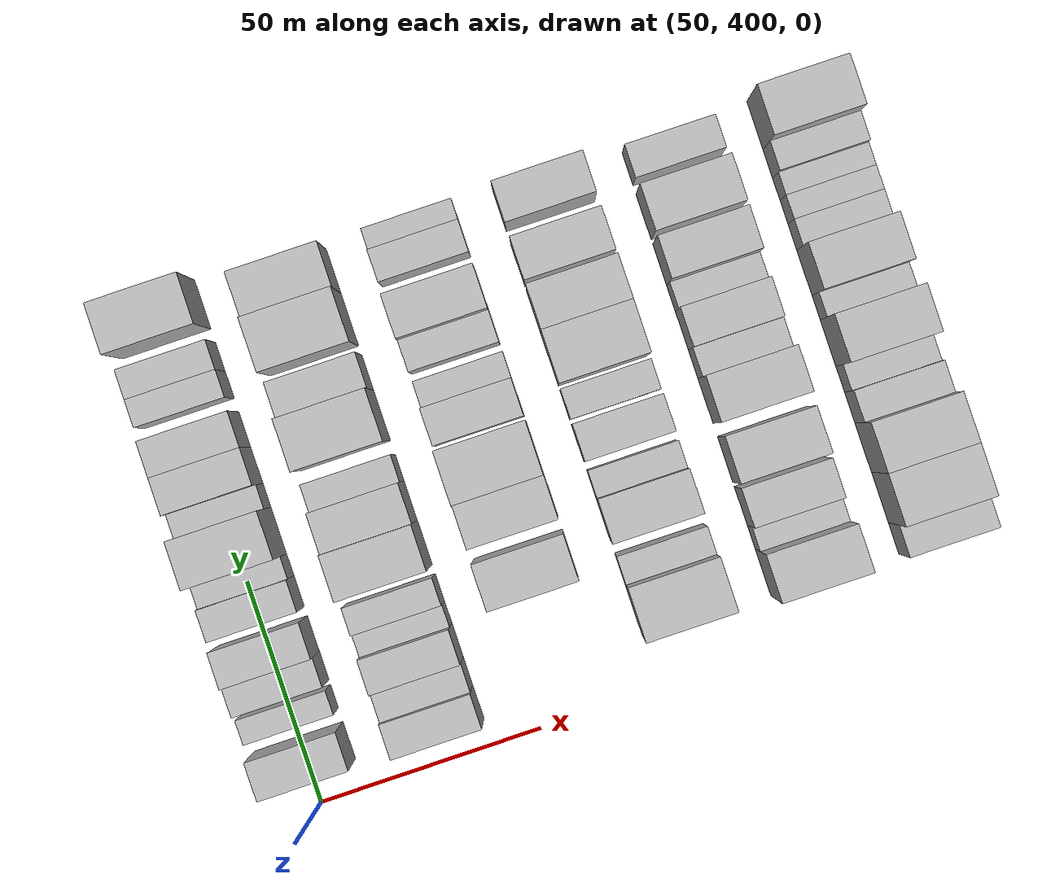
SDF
<sdf version="1.6">
 <world name="default">
  <model name="building_108">
   <static>1</static>
   <pose>50.0000 410.7129 0 0.000000 0.000000 0.000000</pose>
   <link name="link">
    <pose>0 0 9.00 0 0 0</pose>
    <collision name="collision"><geometry><box><size>20.0000 8.5270 18.0000</size></box></geometry></collision>
    <visual name="visual">
     <cast_shadows>0</cast_shadows>
     <geometry><box><size>20.0000 8.5270 18.0000</size></box></geometry>
     <material>
      <script>
       <uri>model://HANNAS_wall/materials/scripts</uri>
       <uri>model://HANNAS_wall/materials/textures</uri>
       <name>vrc/HANNAS_wall</name>
      </script>
     </material>
    </visual>
   </link>
  </model>
  <model name="building_109">
   <static>1</static>
   <pose>50.0000 420.6883 0 0.000000 0.000000 0.000000</pose>
   <link name="link">
    <pose>0 0 6.00 0 0 0</pose>
    <collision name="collision"><geometry><box><size>20.0000 5.4239 12.0000</size></box></geometry></collision>
    <visual name="visual">
     <cast_shadows>0</cast_shadows>
     <geometry><box><size>20.0000 5.4239 12.0000</size></box></geometry>
     <material>
      <script>
       <uri>model://HANNAS_wall/materials/scripts</uri>
       <uri>model://HANNAS_wall/materials/textures</uri>
       <name>vrc/HANNAS_wall</name>
      </script>
     </material>
    </visual>
   </link>
  </model>
  <model name="building_110">
   <static>1</static>
   <pose>50.0000 427.6740 0 0.000000 0.000000 0.000000</pose>
   <link name="link">
    <pose>0 0 7.50 0 0 0</pose>
    <collision name="collision"><geometry><box><size>20.0000 6.5473 15.0000</size></box></geometry></collision>
    <visual name="visual">
     <cast_shadows>0</cast_shadows>
     <geometry><box><size>20.0000 6.5473 15.0000</size></box></geometry>
     <material>
      <script>
       <uri>model://HANNAS_wall/materials/scripts</uri>
       <uri>model://HANNAS_wall/materials/textures</uri>
       <name>vrc/HANNAS_wall</name>
      </script>
     </material>
    </visual>
   </link>
  </model>
  <model name="building_111">
   <static>1</static>
   <pose>50.0000 434.9825 0 0.000000 0.000000 0.000000</pose>
   <link name="link">
    <pose>0 0 9.00 0 0 0</pose>
    <collision name="collision"><geometry><box><size>20.0000 8.0697 18.0000</size></box></geometry></collision>
    <visual name="visual">
     <cast_shadows>0</cast_shadows>
     <geometry><box><size>20.0000 8.0697 18.0000</size></box></geometry>
     <material>
      <script>
       <uri>model://HANNAS_wall/materials/scripts</uri>
       <uri>model://HANNAS_wall/materials/textures</uri>
       <name>vrc/HANNAS_wall</name>
      </script>
     </material>
    </visual>
   </link>
  </model>
  <model name="building_112">
   <static>1</static>
   <pose>50.0000 444.5631 0 0.000000 0.000000 0.000000</pose>
   <link name="link">
    <pose>0 0 7.50 0 0 0</pose>
    <collision name="collision"><geometry><box><size>20.0000 7.0915 15.0000</size></box></geometry></collision>
    <visual name="visual">
     <cast_shadows>0</cast_shadows>
     <geometry><box><size>20.0000 7.0915 15.0000</size></box></geometry>
     <material>
      <script>
       <uri>model://HANNAS_wall/materials/scripts</uri>
       <uri>model://HANNAS_wall/materials/textures</uri>
       <name>vrc/HANNAS_wall</name>
      </script>
     </material>
    </visual>
   </link>
  </model>
  <model name="building_113">
   <static>1</static>
   <pose>50.0000 450.5986 0 0.000000 0.000000 0.000000</pose>
   <link name="link">
    <pose>0 0 6.00 0 0 0</pose>
    <collision name="collision"><geometry><box><size>20.0000 4.9795 12.0000</size></box></geometry></collision>
    <visual name="visual">
     <cast_shadows>0</cast_shadows>
     <geometry><box><size>20.0000 4.9795 12.0000</size></box></geometry>
     <material>
      <script>
       <uri>model://HANNAS_wall/materials/scripts</uri>
       <uri>model://HANNAS_wall/materials/textures</uri>
       <name>vrc/HANNAS_wall</name>
      </script>
     </material>
    </visual>
   </link>
  </model>
  <model name="building_114">
   <static>1</static>
   <pose>50.0000 458.3895 0 0.000000 0.000000 0.000000</pose>
   <link name="link">
    <pose>0 0 12.00 0 0 0</pose>
    <collision name="collision"><geometry><box><size>20.0000 10.6023 24.0000</size></box></geometry></collision>
    <visual name="visual">
     <cast_shadows>0</cast_shadows>
     <geometry><box><size>20.0000 10.6023 24.0000</size></box></geometry>
     <material>
      <script>
       <uri>model://HANNAS_wall/materials/scripts</uri>
       <uri>model://HANNAS_wall/materials/textures</uri>
       <name>vrc/HANNAS_wall</name>
      </script>
     </material>
    </visual>
   </link>
  </model>
  <model name="building_115">
   <static>1</static>
   <pose>50.0000 466.3834 0 0.000000 0.000000 0.000000</pose>
   <link name="link">
    <pose>0 0 6.00 0 0 0</pose>
    <collision name="collision"><geometry><box><size>20.0000 5.3854 12.0000</size></box></geometry></collision>
    <visual name="visual">
     <cast_shadows>0</cast_shadows>
     <geometry><box><size>20.0000 5.3854 12.0000</size></box></geometry>
     <material>
      <script>
       <uri>model://HANNAS_wall/materials/scripts</uri>
       <uri>model://HANNAS_wall/materials/textures</uri>
       <name>vrc/HANNAS_wall</name>
      </script>
     </material>
    </visual>
   </link>
  </model>
  <model name="building_116">
   <static>1</static>
   <pose>50.0000 473.2191 0 0.000000 0.000000 0.000000</pose>
   <link name="link">
    <pose>0 0 9.00 0 0 0</pose>
    <collision name="collision"><geometry><box><size>20.0000 8.2861 18.0000</size></box></geometry></collision>
    <visual name="visual">
     <cast_shadows>0</cast_shadows>
     <geometry><box><size>20.0000 8.2861 18.0000</size></box></geometry>
     <material>
      <script>
       <uri>model://HANNAS_wall/materials/scripts</uri>
       <uri>model://HANNAS_wall/materials/textures</uri>
       <name>vrc/HANNAS_wall</name>
      </script>
     </material>
    </visual>
   </link>
  </model>
  <model name="building_117">
   <static>1</static>
   <pose>50.0000 481.3664 0 0.000000 0.000000 0.000000</pose>
   <link name="link">
    <pose>0 0 9.00 0 0 0</pose>
    <collision name="collision"><geometry><box><size>20.0000 8.0085 18.0000</size></box></geometry></collision>
    <visual name="visual">
     <cast_shadows>0</cast_shadows>
     <geometry><box><size>20.0000 8.0085 18.0000</size></box></geometry>
     <material>
      <script>
       <uri>model://HANNAS_wall/materials/scripts</uri>
       <uri>model://HANNAS_wall/materials/textures</uri>
       <name>vrc/HANNAS_wall</name>
      </script>
     </material>
    </visual>
   </link>
  </model>
  <model name="building_118">
   <static>1</static>
   <pose>50.0000 491.4674 0 0.000000 0.000000 0.000000</pose>
   <link name="link">
    <pose>0 0 7.50 0 0 0</pose>
    <collision name="collision"><geometry><box><size>20.0000 6.1935 15.0000</size></box></geometry></collision>
    <visual name="visual">
     <cast_shadows>0</cast_shadows>
     <geometry><box><size>20.0000 6.1935 15.0000</size></box></geometry>
     <material>
      <script>
       <uri>model://HANNAS_wall/materials/scripts</uri>
       <uri>model://HANNAS_wall/materials/textures</uri>
       <name>vrc/HANNAS_wall</name>
      </script>
     </material>
    </visual>
   </link>
  </model>
  <model name="building_119">
   <static>1</static>
   <pose>50.0000 497.8506 0 0.000000 0.000000 0.000000</pose>
   <link name="link">
    <pose>0 0 7.50 0 0 0</pose>
    <collision name="collision"><geometry><box><size>20.0000 6.5729 15.0000</size></box></geometry></collision>
    <visual name="visual">
     <cast_shadows>0</cast_shadows>
     <geometry><box><size>20.0000 6.5729 15.0000</size></box></geometry>
     <material>
      <script>
       <uri>model://HANNAS_wall/materials/scripts</uri>
       <uri>model://HANNAS_wall/materials/textures</uri>
       <name>vrc/HANNAS_wall</name>
      </script>
     </material>
    </visual>
   </link>
  </model>
  <model name="building_120">
   <static>1</static>
   <pose>50.0000 509.7215 0 0.000000 0.000000 0.000000</pose>
   <link name="link">
    <pose>0 0 12.00 0 0 0</pose>
    <collision name="collision"><geometry><box><size>20.0000 11.1689 24.0000</size></box></geometry></collision>
    <visual name="visual">
     <cast_shadows>0</cast_shadows>
     <geometry><box><size>20.0000 11.1689 24.0000</size></box></geometry>
     <material>
      <script>
       <uri>model://HANNAS_wall/materials/scripts</uri>
       <uri>model://HANNAS_wall/materials/textures</uri>
       <name>vrc/HANNAS_wall</name>
      </script>
     </material>
    </visual>
   </link>
  </model>
  <model name="building_222">
   <static>1</static>
   <pose>79.0000 409.7191 0 0.000000 0.000000 0.000000</pose>
   <link name="link">
    <pose>0 0 9.00 0 0 0</pose>
    <collision name="collision"><geometry><box><size>20.0000 7.7550 18.0000</size></box></geometry></collision>
    <visual name="visual">
     <cast_shadows>0</cast_shadows>
     <geometry><box><size>20.0000 7.7550 18.0000</size></box></geometry>
     <material>
      <script>
       <uri>model://HANNAS_wall/materials/scripts</uri>
       <uri>model://HANNAS_wall/materials/textures</uri>
       <name>vrc/HANNAS_wall</name>
      </script>
     </material>
    </visual>
   </link>
  </model>
  <model name="building_223">
   <static>1</static>
   <pose>79.0000 416.7603 0 0.000000 0.000000 0.000000</pose>
   <link name="link">
    <pose>0 0 7.50 0 0 0</pose>
    <collision name="collision"><geometry><box><size>20.0000 6.3274 15.0000</size></box></geometry></collision>
    <visual name="visual">
     <cast_shadows>0</cast_shadows>
     <geometry><box><size>20.0000 6.3274 15.0000</size></box></geometry>
     <material>
      <script>
       <uri>model://HANNAS_wall/materials/scripts</uri>
       <uri>model://HANNAS_wall/materials/textures</uri>
       <name>vrc/HANNAS_wall</name>
      </script>
     </material>
    </visual>
   </link>
  </model>
  <model name="building_224">
   <static>1</static>
   <pose>79.0000 423.8069 0 0.000000 0.000000 0.000000</pose>
   <link name="link">
    <pose>0 0 9.00 0 0 0</pose>
    <collision name="collision"><geometry><box><size>20.0000 7.7658 18.0000</size></box></geometry></collision>
    <visual name="visual">
     <cast_shadows>0</cast_shadows>
     <geometry><box><size>20.0000 7.7658 18.0000</size></box></geometry>
     <material>
      <script>
       <uri>model://HANNAS_wall/materials/scripts</uri>
       <uri>model://HANNAS_wall/materials/textures</uri>
       <name>vrc/HANNAS_wall</name>
      </script>
     </material>
    </visual>
   </link>
  </model>
  <model name="building_225">
   <static>1</static>
   <pose>79.0000 430.1908 0 0.000000 0.000000 0.000000</pose>
   <link name="link">
    <pose>0 0 6.00 0 0 0</pose>
    <collision name="collision"><geometry><box><size>20.0000 5.0019 12.0000</size></box></geometry></collision>
    <visual name="visual">
     <cast_shadows>0</cast_shadows>
     <geometry><box><size>20.0000 5.0019 12.0000</size></box></geometry>
     <material>
      <script>
       <uri>model://HANNAS_wall/materials/scripts</uri>
       <uri>model://HANNAS_wall/materials/textures</uri>
       <name>vrc/HANNAS_wall</name>
      </script>
     </material>
    </visual>
   </link>
  </model>
  <model name="building_226">
   <static>1</static>
   <pose>79.0000 435.7605 0 0.000000 0.000000 0.000000</pose>
   <link name="link">
    <pose>0 0 7.50 0 0 0</pose>
    <collision name="collision"><geometry><box><size>20.0000 6.1374 15.0000</size></box></geometry></collision>
    <visual name="visual">
     <cast_shadows>0</cast_shadows>
     <geometry><box><size>20.0000 6.1374 15.0000</size></box></geometry>
     <material>
      <script>
       <uri>model://HANNAS_wall/materials/scripts</uri>
       <uri>model://HANNAS_wall/materials/textures</uri>
       <name>vrc/HANNAS_wall</name>
      </script>
     </material>
    </visual>
   </link>
  </model>
  <model name="building_227">
   <static>1</static>
   <pose>79.0000 445.8902 0 0.000000 0.000000 0.000000</pose>
   <link name="link">
    <pose>0 0 12.00 0 0 0</pose>
    <collision name="collision"><geometry><box><size>20.0000 10.1221 24.0000</size></box></geometry></collision>
    <visual name="visual">
     <cast_shadows>0</cast_shadows>
     <geometry><box><size>20.0000 10.1221 24.0000</size></box></geometry>
     <material>
      <script>
       <uri>model://HANNAS_wall/materials/scripts</uri>
       <uri>model://HANNAS_wall/materials/textures</uri>
       <name>vrc/HANNAS_wall</name>
      </script>
     </material>
    </visual>
   </link>
  </model>
  <model name="building_228">
   <static>1</static>
   <pose>79.0000 455.4391 0 0.000000 0.000000 0.000000</pose>
   <link name="link">
    <pose>0 0 10.50 0 0 0</pose>
    <collision name="collision"><geometry><box><size>20.0000 8.9757 21.0000</size></box></geometry></collision>
    <visual name="visual">
     <cast_shadows>0</cast_shadows>
     <geometry><box><size>20.0000 8.9757 21.0000</size></box></geometry>
     <material>
      <script>
       <uri>model://HANNAS_wall/materials/scripts</uri>
       <uri>model://HANNAS_wall/materials/textures</uri>
       <name>vrc/HANNAS_wall</name>
      </script>
     </material>
    </visual>
   </link>
  </model>
  <model name="building_229">
   <static>1</static>
   <pose>79.0000 462.9664 0 0.000000 0.000000 0.000000</pose>
   <link name="link">
    <pose>0 0 7.50 0 0 0</pose>
    <collision name="collision"><geometry><box><size>20.0000 6.0789 15.0000</size></box></geometry></collision>
    <visual name="visual">
     <cast_shadows>0</cast_shadows>
     <geometry><box><size>20.0000 6.0789 15.0000</size></box></geometry>
     <material>
      <script>
       <uri>model://HANNAS_wall/materials/scripts</uri>
       <uri>model://HANNAS_wall/materials/textures</uri>
       <name>vrc/HANNAS_wall</name>
      </script>
     </material>
    </visual>
   </link>
  </model>
  <model name="building_230">
   <static>1</static>
   <pose>79.0000 474.7617 0 0.000000 0.000000 0.000000</pose>
   <link name="link">
    <pose>0 0 12.00 0 0 0</pose>
    <collision name="collision"><geometry><box><size>20.0000 11.5117 24.0000</size></box></geometry></collision>
    <visual name="visual">
     <cast_shadows>0</cast_shadows>
     <geometry><box><size>20.0000 11.5117 24.0000</size></box></geometry>
     <material>
      <script>
       <uri>model://HANNAS_wall/materials/scripts</uri>
       <uri>model://HANNAS_wall/materials/textures</uri>
       <name>vrc/HANNAS_wall</name>
      </script>
     </material>
    </visual>
   </link>
  </model>
  <model name="building_231">
   <static>1</static>
   <pose>79.0000 484.5185 0 0.000000 0.000000 0.000000</pose>
   <link name="link">
    <pose>0 0 9.00 0 0 0</pose>
    <collision name="collision"><geometry><box><size>20.0000 8.0020 18.0000</size></box></geometry></collision>
    <visual name="visual">
     <cast_shadows>0</cast_shadows>
     <geometry><box><size>20.0000 8.0020 18.0000</size></box></geometry>
     <material>
      <script>
       <uri>model://HANNAS_wall/materials/scripts</uri>
       <uri>model://HANNAS_wall/materials/textures</uri>
       <name>vrc/HANNAS_wall</name>
      </script>
     </material>
    </visual>
   </link>
  </model>
  <model name="building_232">
   <static>1</static>
   <pose>79.0000 496.5039 0 0.000000 0.000000 0.000000</pose>
   <link name="link">
    <pose>0 0 12.00 0 0 0</pose>
    <collision name="collision"><geometry><box><size>20.0000 11.9688 24.0000</size></box></geometry></collision>
    <visual name="visual">
     <cast_shadows>0</cast_shadows>
     <geometry><box><size>20.0000 11.9688 24.0000</size></box></geometry>
     <material>
      <script>
       <uri>model://HANNAS_wall/materials/scripts</uri>
       <uri>model://HANNAS_wall/materials/textures</uri>
       <name>vrc/HANNAS_wall</name>
      </script>
     </material>
    </visual>
   </link>
  </model>
  <model name="building_233">
   <static>1</static>
   <pose>79.0000 507.5259 0 0.000000 0.000000 0.000000</pose>
   <link name="link">
    <pose>0 0 10.50 0 0 0</pose>
    <collision name="collision"><geometry><box><size>20.0000 10.0751 21.0000</size></box></geometry></collision>
    <visual name="visual">
     <cast_shadows>0</cast_shadows>
     <geometry><box><size>20.0000 10.0751 21.0000</size></box></geometry>
     <material>
      <script>
       <uri>model://HANNAS_wall/materials/scripts</uri>
       <uri>model://HANNAS_wall/materials/textures</uri>
       <name>vrc/HANNAS_wall</name>
      </script>
     </material>
    </visual>
   </link>
  </model>
  <model name="building_337">
   <static>1</static>
   <pose>108.0000 434.0987 0 0.000000 0.000000 0.000000</pose>
   <link name="link">
    <pose>0 0 12.00 0 0 0</pose>
    <collision name="collision"><geometry><box><size>20.0000 10.2531 24.0000</size></box></geometry></collision>
    <visual name="visual">
     <cast_shadows>0</cast_shadows>
     <geometry><box><size>20.0000 10.2531 24.0000</size></box></geometry>
     <material>
      <script>
       <uri>model://HANNAS_wall/materials/scripts</uri>
       <uri>model://HANNAS_wall/materials/textures</uri>
       <name>vrc/HANNAS_wall</name>
      </script>
     </material>
    </visual>
   </link>
  </model>
  <model name="building_338">
   <static>1</static>
   <pose>108.0000 447.0614 0 0.000000 0.000000 0.000000</pose>
   <link name="link">
    <pose>0 0 10.50 0 0 0</pose>
    <collision name="collision"><geometry><box><size>20.0000 9.6722 21.0000</size></box></geometry></collision>
    <visual name="visual">
     <cast_shadows>0</cast_shadows>
     <geometry><box><size>20.0000 9.6722 21.0000</size></box></geometry>
     <material>
      <script>
       <uri>model://HANNAS_wall/materials/scripts</uri>
       <uri>model://HANNAS_wall/materials/textures</uri>
       <name>vrc/HANNAS_wall</name>
      </script>
     </material>
    </visual>
   </link>
  </model>
  <model name="building_339">
   <static>1</static>
   <pose>108.0000 457.8442 0 0.000000 0.000000 0.000000</pose>
   <link name="link">
    <pose>0 0 12.00 0 0 0</pose>
    <collision name="collision"><geometry><box><size>20.0000 11.8935 24.0000</size></box></geometry></collision>
    <visual name="visual">
     <cast_shadows>0</cast_shadows>
     <geometry><box><size>20.0000 11.8935 24.0000</size></box></geometry>
     <material>
      <script>
       <uri>model://HANNAS_wall/materials/scripts</uri>
       <uri>model://HANNAS_wall/materials/textures</uri>
       <name>vrc/HANNAS_wall</name>
      </script>
     </material>
    </visual>
   </link>
  </model>
  <model name="building_340">
   <static>1</static>
   <pose>108.0000 468.9716 0 0.000000 0.000000 0.000000</pose>
   <link name="link">
    <pose>0 0 9.00 0 0 0</pose>
    <collision name="collision"><geometry><box><size>20.0000 8.3612 18.0000</size></box></geometry></collision>
    <visual name="visual">
     <cast_shadows>0</cast_shadows>
     <geometry><box><size>20.0000 8.3612 18.0000</size></box></geometry>
     <material>
      <script>
       <uri>model://HANNAS_wall/materials/scripts</uri>
       <uri>model://HANNAS_wall/materials/textures</uri>
       <name>vrc/HANNAS_wall</name>
      </script>
     </material>
    </visual>
   </link>
  </model>
  <model name="building_341">
   <static>1</static>
   <pose>108.0000 476.1257 0 0.000000 0.000000 0.000000</pose>
   <link name="link">
    <pose>0 0 6.00 0 0 0</pose>
    <collision name="collision"><geometry><box><size>20.0000 5.9470 12.0000</size></box></geometry></collision>
    <visual name="visual">
     <cast_shadows>0</cast_shadows>
     <geometry><box><size>20.0000 5.9470 12.0000</size></box></geometry>
     <material>
      <script>
       <uri>model://HANNAS_wall/materials/scripts</uri>
       <uri>model://HANNAS_wall/materials/textures</uri>
       <name>vrc/HANNAS_wall</name>
      </script>
     </material>
    </visual>
   </link>
  </model>
  <model name="building_342">
   <static>1</static>
   <pose>108.0000 484.6479 0 0.000000 0.000000 0.000000</pose>
   <link name="link">
    <pose>0 0 7.50 0 0 0</pose>
    <collision name="collision"><geometry><box><size>20.0000 7.0975 15.0000</size></box></geometry></collision>
    <visual name="visual">
     <cast_shadows>0</cast_shadows>
     <geometry><box><size>20.0000 7.0975 15.0000</size></box></geometry>
     <material>
      <script>
       <uri>model://HANNAS_wall/materials/scripts</uri>
       <uri>model://HANNAS_wall/materials/textures</uri>
       <name>vrc/HANNAS_wall</name>
      </script>
     </material>
    </visual>
   </link>
  </model>
  <model name="building_343">
   <static>1</static>
   <pose>108.0000 493.0697 0 0.000000 0.000000 0.000000</pose>
   <link name="link">
    <pose>0 0 10.50 0 0 0</pose>
    <collision name="collision"><geometry><box><size>20.0000 9.7461 21.0000</size></box></geometry></collision>
    <visual name="visual">
     <cast_shadows>0</cast_shadows>
     <geometry><box><size>20.0000 9.7461 21.0000</size></box></geometry>
     <material>
      <script>
       <uri>model://HANNAS_wall/materials/scripts</uri>
       <uri>model://HANNAS_wall/materials/textures</uri>
       <name>vrc/HANNAS_wall</name>
      </script>
     </material>
    </visual>
   </link>
  </model>
  <model name="building_344">
   <static>1</static>
   <pose>108.0000 504.5458 0 0.000000 0.000000 0.000000</pose>
   <link name="link">
    <pose>0 0 7.50 0 0 0</pose>
    <collision name="collision"><geometry><box><size>20.0000 7.2060 15.0000</size></box></geometry></collision>
    <visual name="visual">
     <cast_shadows>0</cast_shadows>
     <geometry><box><size>20.0000 7.2060 15.0000</size></box></geometry>
     <material>
      <script>
       <uri>model://HANNAS_wall/materials/scripts</uri>
       <uri>model://HANNAS_wall/materials/textures</uri>
       <name>vrc/HANNAS_wall</name>
      </script>
     </material>
    </visual>
   </link>
  </model>
  <model name="building_345">
   <static>1</static>
   <pose>108.0000 510.6068 0 0.000000 0.000000 0.000000</pose>
   <link name="link">
    <pose>0 0 6.00 0 0 0</pose>
    <collision name="collision"><geometry><box><size>20.0000 4.9160 12.0000</size></box></geometry></collision>
    <visual name="visual">
     <cast_shadows>0</cast_shadows>
     <geometry><box><size>20.0000 4.9160 12.0000</size></box></geometry>
     <material>
      <script>
       <uri>model://HANNAS_wall/materials/scripts</uri>
       <uri>model://HANNAS_wall/materials/textures</uri>
       <name>vrc/HANNAS_wall</name>
      </script>
     </material>
    </visual>
   </link>
  </model>
  <model name="building_440">
   <static>1</static>
   <pose>137.0000 418.4903 0 0.000000 0.000000 0.000000</pose>
   <link name="link">
    <pose>0 0 12.00 0 0 0</pose>
    <collision name="collision"><geometry><box><size>20.0000 11.9737 24.0000</size></box></geometry></collision>
    <visual name="visual">
     <cast_shadows>0</cast_shadows>
     <geometry><box><size>20.0000 11.9737 24.0000</size></box></geometry>
     <material>
      <script>
       <uri>model://HANNAS_wall/materials/scripts</uri>
       <uri>model://HANNAS_wall/materials/textures</uri>
       <name>vrc/HANNAS_wall</name>
      </script>
     </material>
    </visual>
   </link>
  </model>
  <model name="building_441">
   <static>1</static>
   <pose>137.0000 427.6002 0 0.000000 0.000000 0.000000</pose>
   <link name="link">
    <pose>0 0 7.50 0 0 0</pose>
    <collision name="collision"><geometry><box><size>20.0000 6.2462 15.0000</size></box></geometry></collision>
    <visual name="visual">
     <cast_shadows>0</cast_shadows>
     <geometry><box><size>20.0000 6.2462 15.0000</size></box></geometry>
     <material>
      <script>
       <uri>model://HANNAS_wall/materials/scripts</uri>
       <uri>model://HANNAS_wall/materials/textures</uri>
       <name>vrc/HANNAS_wall</name>
      </script>
     </material>
    </visual>
   </link>
  </model>
  <model name="building_442">
   <static>1</static>
   <pose>137.0000 438.6458 0 0.000000 0.000000 0.000000</pose>
   <link name="link">
    <pose>0 0 10.50 0 0 0</pose>
    <collision name="collision"><geometry><box><size>20.0000 9.8450 21.0000</size></box></geometry></collision>
    <visual name="visual">
     <cast_shadows>0</cast_shadows>
     <geometry><box><size>20.0000 9.8450 21.0000</size></box></geometry>
     <material>
      <script>
       <uri>model://HANNAS_wall/materials/scripts</uri>
       <uri>model://HANNAS_wall/materials/textures</uri>
       <name>vrc/HANNAS_wall</name>
      </script>
     </material>
    </visual>
   </link>
  </model>
  <model name="building_443">
   <static>1</static>
   <pose>137.0000 446.6160 0 0.000000 0.000000 0.000000</pose>
   <link name="link">
    <pose>0 0 7.50 0 0 0</pose>
    <collision name="collision"><geometry><box><size>20.0000 6.0954 15.0000</size></box></geometry></collision>
    <visual name="visual">
     <cast_shadows>0</cast_shadows>
     <geometry><box><size>20.0000 6.0954 15.0000</size></box></geometry>
     <material>
      <script>
       <uri>model://HANNAS_wall/materials/scripts</uri>
       <uri>model://HANNAS_wall/materials/textures</uri>
       <name>vrc/HANNAS_wall</name>
      </script>
     </material>
    </visual>
   </link>
  </model>
  <model name="building_444">
   <static>1</static>
   <pose>137.0000 455.8080 0 0.000000 0.000000 0.000000</pose>
   <link name="link">
    <pose>0 0 9.00 0 0 0</pose>
    <collision name="collision"><geometry><box><size>20.0000 8.2885 18.0000</size></box></geometry></collision>
    <visual name="visual">
     <cast_shadows>0</cast_shadows>
     <geometry><box><size>20.0000 8.2885 18.0000</size></box></geometry>
     <material>
      <script>
       <uri>model://HANNAS_wall/materials/scripts</uri>
       <uri>model://HANNAS_wall/materials/textures</uri>
       <name>vrc/HANNAS_wall</name>
      </script>
     </material>
    </visual>
   </link>
  </model>
  <model name="building_445">
   <static>1</static>
   <pose>137.0000 464.3115 0 0.000000 0.000000 0.000000</pose>
   <link name="link">
    <pose>0 0 7.50 0 0 0</pose>
    <collision name="collision"><geometry><box><size>20.0000 6.7185 15.0000</size></box></geometry></collision>
    <visual name="visual">
     <cast_shadows>0</cast_shadows>
     <geometry><box><size>20.0000 6.7185 15.0000</size></box></geometry>
     <material>
      <script>
       <uri>model://HANNAS_wall/materials/scripts</uri>
       <uri>model://HANNAS_wall/materials/textures</uri>
       <name>vrc/HANNAS_wall</name>
      </script>
     </material>
    </visual>
   </link>
  </model>
  <model name="building_446">
   <static>1</static>
   <pose>137.0000 474.4955 0 0.000000 0.000000 0.000000</pose>
   <link name="link">
    <pose>0 0 12.00 0 0 0</pose>
    <collision name="collision"><geometry><box><size>20.0000 11.6496 24.0000</size></box></geometry></collision>
    <visual name="visual">
     <cast_shadows>0</cast_shadows>
     <geometry><box><size>20.0000 11.6496 24.0000</size></box></geometry>
     <material>
      <script>
       <uri>model://HANNAS_wall/materials/scripts</uri>
       <uri>model://HANNAS_wall/materials/textures</uri>
       <name>vrc/HANNAS_wall</name>
      </script>
     </material>
    </visual>
   </link>
  </model>
  <model name="building_447">
   <static>1</static>
   <pose>137.0000 485.2521 0 0.000000 0.000000 0.000000</pose>
   <link name="link">
    <pose>0 0 12.00 0 0 0</pose>
    <collision name="collision"><geometry><box><size>20.0000 9.8636 24.0000</size></box></geometry></collision>
    <visual name="visual">
     <cast_shadows>0</cast_shadows>
     <geometry><box><size>20.0000 9.8636 24.0000</size></box></geometry>
     <material>
      <script>
       <uri>model://HANNAS_wall/materials/scripts</uri>
       <uri>model://HANNAS_wall/materials/textures</uri>
       <name>vrc/HANNAS_wall</name>
      </script>
     </material>
    </visual>
   </link>
  </model>
  <model name="building_448">
   <static>1</static>
   <pose>137.0000 495.9724 0 0.000000 0.000000 0.000000</pose>
   <link name="link">
    <pose>0 0 10.50 0 0 0</pose>
    <collision name="collision"><geometry><box><size>20.0000 9.5770 21.0000</size></box></geometry></collision>
    <visual name="visual">
     <cast_shadows>0</cast_shadows>
     <geometry><box><size>20.0000 9.5770 21.0000</size></box></geometry>
     <material>
      <script>
       <uri>model://HANNAS_wall/materials/scripts</uri>
       <uri>model://HANNAS_wall/materials/textures</uri>
       <name>vrc/HANNAS_wall</name>
      </script>
     </material>
    </visual>
   </link>
  </model>
  <model name="building_449">
   <static>1</static>
   <pose>137.0000 508.2767 0 0.000000 0.000000 0.000000</pose>
   <link name="link">
    <pose>0 0 10.50 0 0 0</pose>
    <collision name="collision"><geometry><box><size>20.0000 9.0315 21.0000</size></box></geometry></collision>
    <visual name="visual">
     <cast_shadows>0</cast_shadows>
     <geometry><box><size>20.0000 9.0315 21.0000</size></box></geometry>
     <material>
      <script>
       <uri>model://HANNAS_wall/materials/scripts</uri>
       <uri>model://HANNAS_wall/materials/textures</uri>
       <name>vrc/HANNAS_wall</name>
      </script>
     </material>
    </visual>
   </link>
  </model>
  <model name="building_555">
   <static>1</static>
   <pose>166.0000 416.6066 0 0.000000 0.000000 0.000000</pose>
   <link name="link">
    <pose>0 0 12.00 0 0 0</pose>
    <collision name="collision"><geometry><box><size>20.0000 10.5934 24.0000</size></box></geometry></collision>
    <visual name="visual">
     <cast_shadows>0</cast_shadows>
     <geometry><box><size>20.0000 10.5934 24.0000</size></box></geometry>
     <material>
      <script>
       <uri>model://HANNAS_wall/materials/scripts</uri>
       <uri>model://HANNAS_wall/materials/textures</uri>
       <name>vrc/HANNAS_wall</name>
      </script>
     </material>
    </visual>
   </link>
  </model>
  <model name="building_556">
   <static>1</static>
   <pose>166.0000 424.6196 0 0.000000 0.000000 0.000000</pose>
   <link name="link">
    <pose>0 0 6.00 0 0 0</pose>
    <collision name="collision"><geometry><box><size>20.0000 5.4326 12.0000</size></box></geometry></collision>
    <visual name="visual">
     <cast_shadows>0</cast_shadows>
     <geometry><box><size>20.0000 5.4326 12.0000</size></box></geometry>
     <material>
      <script>
       <uri>model://HANNAS_wall/materials/scripts</uri>
       <uri>model://HANNAS_wall/materials/textures</uri>
       <name>vrc/HANNAS_wall</name>
      </script>
     </material>
    </visual>
   </link>
  </model>
  <model name="building_557">
   <static>1</static>
   <pose>166.0000 431.7102 0 0.000000 0.000000 0.000000</pose>
   <link name="link">
    <pose>0 0 9.00 0 0 0</pose>
    <collision name="collision"><geometry><box><size>20.0000 8.7487 18.0000</size></box></geometry></collision>
    <visual name="visual">
     <cast_shadows>0</cast_shadows>
     <geometry><box><size>20.0000 8.7487 18.0000</size></box></geometry>
     <material>
      <script>
       <uri>model://HANNAS_wall/materials/scripts</uri>
       <uri>model://HANNAS_wall/materials/textures</uri>
       <name>vrc/HANNAS_wall</name>
      </script>
     </material>
    </visual>
   </link>
  </model>
  <model name="building_558">
   <static>1</static>
   <pose>166.0000 442.2811 0 0.000000 0.000000 0.000000</pose>
   <link name="link">
    <pose>0 0 10.50 0 0 0</pose>
    <collision name="collision"><geometry><box><size>20.0000 10.3932 21.0000</size></box></geometry></collision>
    <visual name="visual">
     <cast_shadows>0</cast_shadows>
     <geometry><box><size>20.0000 10.3932 21.0000</size></box></geometry>
     <material>
      <script>
       <uri>model://HANNAS_wall/materials/scripts</uri>
       <uri>model://HANNAS_wall/materials/textures</uri>
       <name>vrc/HANNAS_wall</name>
      </script>
     </material>
    </visual>
   </link>
  </model>
  <model name="building_559">
   <static>1</static>
   <pose>166.0000 455.5504 0 0.000000 0.000000 0.000000</pose>
   <link name="link">
    <pose>0 0 12.00 0 0 0</pose>
    <collision name="collision"><geometry><box><size>20.0000 10.1453 24.0000</size></box></geometry></collision>
    <visual name="visual">
     <cast_shadows>0</cast_shadows>
     <geometry><box><size>20.0000 10.1453 24.0000</size></box></geometry>
     <material>
      <script>
       <uri>model://HANNAS_wall/materials/scripts</uri>
       <uri>model://HANNAS_wall/materials/textures</uri>
       <name>vrc/HANNAS_wall</name>
      </script>
     </material>
    </visual>
   </link>
  </model>
  <model name="building_560">
   <static>1</static>
   <pose>166.0000 463.8497 0 0.000000 0.000000 0.000000</pose>
   <link name="link">
    <pose>0 0 7.50 0 0 0</pose>
    <collision name="collision"><geometry><box><size>20.0000 6.4535 15.0000</size></box></geometry></collision>
    <visual name="visual">
     <cast_shadows>0</cast_shadows>
     <geometry><box><size>20.0000 6.4535 15.0000</size></box></geometry>
     <material>
      <script>
       <uri>model://HANNAS_wall/materials/scripts</uri>
       <uri>model://HANNAS_wall/materials/textures</uri>
       <name>vrc/HANNAS_wall</name>
      </script>
     </material>
    </visual>
   </link>
  </model>
  <model name="building_561">
   <static>1</static>
   <pose>166.0000 471.4450 0 0.000000 0.000000 0.000000</pose>
   <link name="link">
    <pose>0 0 9.00 0 0 0</pose>
    <collision name="collision"><geometry><box><size>20.0000 8.7371 18.0000</size></box></geometry></collision>
    <visual name="visual">
     <cast_shadows>0</cast_shadows>
     <geometry><box><size>20.0000 8.7371 18.0000</size></box></geometry>
     <material>
      <script>
       <uri>model://HANNAS_wall/materials/scripts</uri>
       <uri>model://HANNAS_wall/materials/textures</uri>
       <name>vrc/HANNAS_wall</name>
      </script>
     </material>
    </visual>
   </link>
  </model>
  <model name="building_562">
   <static>1</static>
   <pose>166.0000 478.7695 0 0.000000 0.000000 0.000000</pose>
   <link name="link">
    <pose>0 0 6.00 0 0 0</pose>
    <collision name="collision"><geometry><box><size>20.0000 5.9120 12.0000</size></box></geometry></collision>
    <visual name="visual">
     <cast_shadows>0</cast_shadows>
     <geometry><box><size>20.0000 5.9120 12.0000</size></box></geometry>
     <material>
      <script>
       <uri>model://HANNAS_wall/materials/scripts</uri>
       <uri>model://HANNAS_wall/materials/textures</uri>
       <name>vrc/HANNAS_wall</name>
      </script>
     </material>
    </visual>
   </link>
  </model>
  <model name="building_563">
   <static>1</static>
   <pose>166.0000 486.4432 0 0.000000 0.000000 0.000000</pose>
   <link name="link">
    <pose>0 0 10.50 0 0 0</pose>
    <collision name="collision"><geometry><box><size>20.0000 9.4354 21.0000</size></box></geometry></collision>
    <visual name="visual">
     <cast_shadows>0</cast_shadows>
     <geometry><box><size>20.0000 9.4354 21.0000</size></box></geometry>
     <material>
      <script>
       <uri>model://HANNAS_wall/materials/scripts</uri>
       <uri>model://HANNAS_wall/materials/textures</uri>
       <name>vrc/HANNAS_wall</name>
      </script>
     </material>
    </visual>
   </link>
  </model>
  <model name="building_564">
   <static>1</static>
   <pose>166.0000 497.3040 0 0.000000 0.000000 0.000000</pose>
   <link name="link">
    <pose>0 0 10.50 0 0 0</pose>
    <collision name="collision"><geometry><box><size>20.0000 10.2863 21.0000</size></box></geometry></collision>
    <visual name="visual">
     <cast_shadows>0</cast_shadows>
     <geometry><box><size>20.0000 10.2863 21.0000</size></box></geometry>
     <material>
      <script>
       <uri>model://HANNAS_wall/materials/scripts</uri>
       <uri>model://HANNAS_wall/materials/textures</uri>
       <name>vrc/HANNAS_wall</name>
      </script>
     </material>
    </visual>
   </link>
  </model>
  <model name="building_565">
   <static>1</static>
   <pose>166.0000 508.1110 0 0.000000 0.000000 0.000000</pose>
   <link name="link">
    <pose>0 0 7.50 0 0 0</pose>
    <collision name="collision"><geometry><box><size>20.0000 7.3276 15.0000</size></box></geometry></collision>
    <visual name="visual">
     <cast_shadows>0</cast_shadows>
     <geometry><box><size>20.0000 7.3276 15.0000</size></box></geometry>
     <material>
      <script>
       <uri>model://HANNAS_wall/materials/scripts</uri>
       <uri>model://HANNAS_wall/materials/textures</uri>
       <name>vrc/HANNAS_wall</name>
      </script>
     </material>
    </visual>
   </link>
  </model>
  <model name="building_673">
   <static>1</static>
   <pose>195.0000 414.5628 0 0.000000 0.000000 0.000000</pose>
   <link name="link">
    <pose>0 0 7.50 0 0 0</pose>
    <collision name="collision"><geometry><box><size>20.0000 7.1509 15.0000</size></box></geometry></collision>
    <visual name="visual">
     <cast_shadows>0</cast_shadows>
     <geometry><box><size>20.0000 7.1509 15.0000</size></box></geometry>
     <material>
      <script>
       <uri>model://HANNAS_wall/materials/scripts</uri>
       <uri>model://HANNAS_wall/materials/textures</uri>
       <name>vrc/HANNAS_wall</name>
      </script>
     </material>
    </visual>
   </link>
  </model>
  <model name="building_674">
   <static>1</static>
   <pose>195.0000 423.9014 0 0.000000 0.000000 0.000000</pose>
   <link name="link">
    <pose>0 0 12.00 0 0 0</pose>
    <collision name="collision"><geometry><box><size>20.0000 11.5262 24.0000</size></box></geometry></collision>
    <visual name="visual">
     <cast_shadows>0</cast_shadows>
     <geometry><box><size>20.0000 11.5262 24.0000</size></box></geometry>
     <material>
      <script>
       <uri>model://HANNAS_wall/materials/scripts</uri>
       <uri>model://HANNAS_wall/materials/textures</uri>
       <name>vrc/HANNAS_wall</name>
      </script>
     </material>
    </visual>
   </link>
  </model>
  <model name="building_675">
   <static>1</static>
   <pose>195.0000 435.2084 0 0.000000 0.000000 0.000000</pose>
   <link name="link">
    <pose>0 0 12.00 0 0 0</pose>
    <collision name="collision"><geometry><box><size>20.0000 11.0880 24.0000</size></box></geometry></collision>
    <visual name="visual">
     <cast_shadows>0</cast_shadows>
     <geometry><box><size>20.0000 11.0880 24.0000</size></box></geometry>
     <material>
      <script>
       <uri>model://HANNAS_wall/materials/scripts</uri>
       <uri>model://HANNAS_wall/materials/textures</uri>
       <name>vrc/HANNAS_wall</name>
      </script>
     </material>
    </visual>
   </link>
  </model>
  <model name="building_676">
   <static>1</static>
   <pose>195.0000 444.2928 0 0.000000 0.000000 0.000000</pose>
   <link name="link">
    <pose>0 0 7.50 0 0 0</pose>
    <collision name="collision"><geometry><box><size>20.0000 7.0808 15.0000</size></box></geometry></collision>
    <visual name="visual">
     <cast_shadows>0</cast_shadows>
     <geometry><box><size>20.0000 7.0808 15.0000</size></box></geometry>
     <material>
      <script>
       <uri>model://HANNAS_wall/materials/scripts</uri>
       <uri>model://HANNAS_wall/materials/textures</uri>
       <name>vrc/HANNAS_wall</name>
      </script>
     </material>
    </visual>
   </link>
  </model>
  <model name="building_677">
   <static>1</static>
   <pose>195.0000 450.7574 0 0.000000 0.000000 0.000000</pose>
   <link name="link">
    <pose>0 0 6.00 0 0 0</pose>
    <collision name="collision"><geometry><box><size>20.0000 5.8484 12.0000</size></box></geometry></collision>
    <visual name="visual">
     <cast_shadows>0</cast_shadows>
     <geometry><box><size>20.0000 5.8484 12.0000</size></box></geometry>
     <material>
      <script>
       <uri>model://HANNAS_wall/materials/scripts</uri>
       <uri>model://HANNAS_wall/materials/textures</uri>
       <name>vrc/HANNAS_wall</name>
      </script>
     </material>
    </visual>
   </link>
  </model>
  <model name="building_678">
   <static>1</static>
   <pose>195.0000 458.9349 0 0.000000 0.000000 0.000000</pose>
   <link name="link">
    <pose>0 0 12.00 0 0 0</pose>
    <collision name="collision"><geometry><box><size>20.0000 10.5066 24.0000</size></box></geometry></collision>
    <visual name="visual">
     <cast_shadows>0</cast_shadows>
     <geometry><box><size>20.0000 10.5066 24.0000</size></box></geometry>
     <material>
      <script>
       <uri>model://HANNAS_wall/materials/scripts</uri>
       <uri>model://HANNAS_wall/materials/textures</uri>
       <name>vrc/HANNAS_wall</name>
      </script>
     </material>
    </visual>
   </link>
  </model>
  <model name="building_679">
   <static>1</static>
   <pose>195.0000 466.9295 0 0.000000 0.000000 0.000000</pose>
   <link name="link">
    <pose>0 0 6.00 0 0 0</pose>
    <collision name="collision"><geometry><box><size>20.0000 5.4828 12.0000</size></box></geometry></collision>
    <visual name="visual">
     <cast_shadows>0</cast_shadows>
     <geometry><box><size>20.0000 5.4828 12.0000</size></box></geometry>
     <material>
      <script>
       <uri>model://HANNAS_wall/materials/scripts</uri>
       <uri>model://HANNAS_wall/materials/textures</uri>
       <name>vrc/HANNAS_wall</name>
      </script>
     </material>
    </visual>
   </link>
  </model>
  <model name="building_680">
   <static>1</static>
   <pose>195.0000 474.8312 0 0.000000 0.000000 0.000000</pose>
   <link name="link">
    <pose>0 0 10.50 0 0 0</pose>
    <collision name="collision"><geometry><box><size>20.0000 10.3206 21.0000</size></box></geometry></collision>
    <visual name="visual">
     <cast_shadows>0</cast_shadows>
     <geometry><box><size>20.0000 10.3206 21.0000</size></box></geometry>
     <material>
      <script>
       <uri>model://HANNAS_wall/materials/scripts</uri>
       <uri>model://HANNAS_wall/materials/textures</uri>
       <name>vrc/HANNAS_wall</name>
      </script>
     </material>
    </visual>
   </link>
  </model>
  <model name="building_681">
   <static>1</static>
   <pose>195.0000 482.9413 0 0.000000 0.000000 0.000000</pose>
   <link name="link">
    <pose>0 0 6.00 0 0 0</pose>
    <collision name="collision"><geometry><box><size>20.0000 5.8997 12.0000</size></box></geometry></collision>
    <visual name="visual">
     <cast_shadows>0</cast_shadows>
     <geometry><box><size>20.0000 5.8997 12.0000</size></box></geometry>
     <material>
      <script>
       <uri>model://HANNAS_wall/materials/scripts</uri>
       <uri>model://HANNAS_wall/materials/textures</uri>
       <name>vrc/HANNAS_wall</name>
      </script>
     </material>
    </visual>
   </link>
  </model>
  <model name="building_682">
   <static>1</static>
   <pose>195.0000 488.5748 0 0.000000 0.000000 0.000000</pose>
   <link name="link">
    <pose>0 0 6.00 0 0 0</pose>
    <collision name="collision"><geometry><box><size>20.0000 5.3675 12.0000</size></box></geometry></collision>
    <visual name="visual">
     <cast_shadows>0</cast_shadows>
     <geometry><box><size>20.0000 5.3675 12.0000</size></box></geometry>
     <material>
      <script>
       <uri>model://HANNAS_wall/materials/scripts</uri>
       <uri>model://HANNAS_wall/materials/textures</uri>
       <name>vrc/HANNAS_wall</name>
      </script>
     </material>
    </visual>
   </link>
  </model>
  <model name="building_683">
   <static>1</static>
   <pose>195.0000 493.7818 0 0.000000 0.000000 0.000000</pose>
   <link name="link">
    <pose>0 0 6.00 0 0 0</pose>
    <collision name="collision"><geometry><box><size>20.0000 5.0465 12.0000</size></box></geometry></collision>
    <visual name="visual">
     <cast_shadows>0</cast_shadows>
     <geometry><box><size>20.0000 5.0465 12.0000</size></box></geometry>
     <material>
      <script>
       <uri>model://HANNAS_wall/materials/scripts</uri>
       <uri>model://HANNAS_wall/materials/textures</uri>
       <name>vrc/HANNAS_wall</name>
      </script>
     </material>
    </visual>
   </link>
  </model>
  <model name="building_684">
   <static>1</static>
   <pose>195.0000 499.5504 0 0.000000 0.000000 0.000000</pose>
   <link name="link">
    <pose>0 0 7.50 0 0 0</pose>
    <collision name="collision"><geometry><box><size>20.0000 6.4906 15.0000</size></box></geometry></collision>
    <visual name="visual">
     <cast_shadows>0</cast_shadows>
     <geometry><box><size>20.0000 6.4906 15.0000</size></box></geometry>
     <material>
      <script>
       <uri>model://HANNAS_wall/materials/scripts</uri>
       <uri>model://HANNAS_wall/materials/textures</uri>
       <name>vrc/HANNAS_wall</name>
      </script>
     </material>
    </visual>
   </link>
  </model>
  <model name="building_685">
   <static>1</static>
   <pose>195.0000 508.3054 0 0.000000 0.000000 0.000000</pose>
   <link name="link">
    <pose>0 0 12.00 0 0 0</pose>
    <collision name="collision"><geometry><box><size>20.0000 11.0194 24.0000</size></box></geometry></collision>
    <visual name="visual">
     <cast_shadows>0</cast_shadows>
     <geometry><box><size>20.0000 11.0194 24.0000</size></box></geometry>
     <material>
      <script>
       <uri>model://HANNAS_wall/materials/scripts</uri>
       <uri>model://HANNAS_wall/materials/textures</uri>
       <name>vrc/HANNAS_wall</name>
      </script>
     </material>
    </visual>
   </link>
  </model>
 </world>
</sdf>
